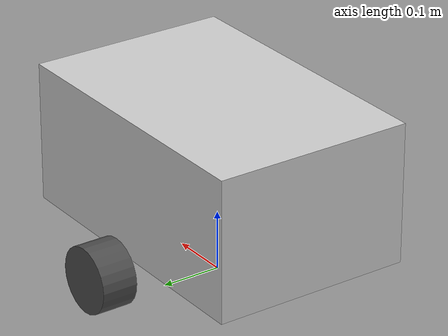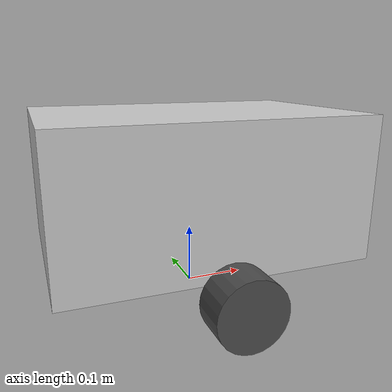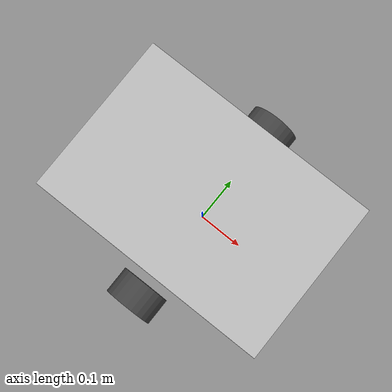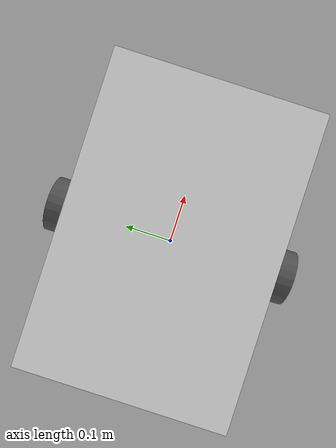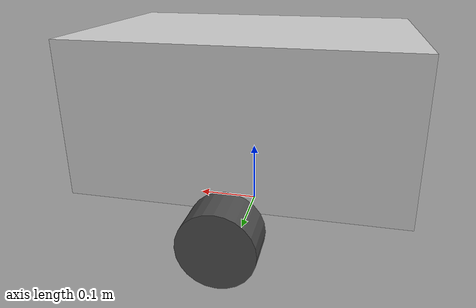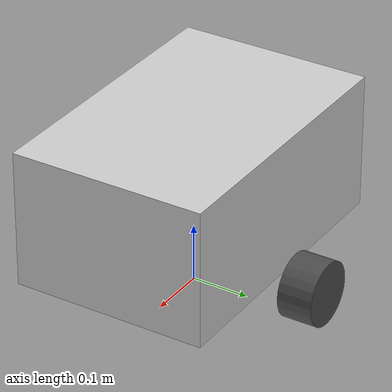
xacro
<?xml version="1.0"?>
<robot xmlns:xacro="http://www.ros.org/wiki/xacro" name="shark_description">

  <xacro:property name="base_width" value="0.335" />
  <xacro:property name="base_len" value="0.5" />
  <xacro:property name="base_height" value="0.235" />
  <xacro:property name="wheel_radius" value="0.055" />
  <xacro:property name="base_wheel_gap" value="0.05" />
  <xacro:property name="wheel_width" value="0.06" />
  <xacro:property name="wheel_separation" value="0.39" />
  <xacro:property name="wheel_joint_offset" value="0.0" />
  <xacro:property name="caster_height" value="0.07" />

  <xacro:macro name="box_inertia" params="m w h d">
    <inertial>
      <mass value="${m}"/>
      <inertia ixx="${m / 12.0 * (d*d + h*h)}" ixy="0.0" ixz="0.0" iyy="${m / 12.0 * (w*w + h*h)}" iyz="0.0" izz="${m / 12.0 * (w*w + d*d)}"/>
    </inertial>
  </xacro:macro>

  <link name="base_footprint">
    <xacro:box_inertia m="8" w="0.001" h="0.001" d="0.001"/>
    <visual>
      <origin xyz="0 0 0" rpy="0 0 0" />
      <material name="white"/>
        <geometry>
            <box size="0.001 0.001 0.001" />
        </geometry>
    </visual>
  </link>

  <link name="base_link">
    <xacro:box_inertia m="1" w="${base_len}" h="${base_width}" d="0.01"/>
    <visual>
      <material name="lightgray"/>
      <geometry>
        <box size="${base_len} ${base_width} ${base_height}"/>
      </geometry>
    </visual>
    <collision>
      <geometry>
        <box size="${base_len} ${base_width} ${base_height}"/>
      </geometry>
    </collision>
  </link>

  <joint name="base_link_joint" type="fixed">
    <origin xyz="0 0 ${base_height/2 + caster_height}" rpy="0 0 0" />
    <parent link="base_footprint"/>
    <child link="base_link" />
  </joint>

  <xacro:macro name="cylinder_inertia" params="m r h">
    <inertial>
      <mass value="${m}"/>
      <inertia ixx="${m*(3*r*r+h*h)/12}" ixy = "0" ixz = "0" iyy="${m*(3*r*r+h*h)/12}" iyz = "0" izz="${m*r*r/2}"/>
    </inertial>
  </xacro:macro>

  <xacro:macro name="wheel" params="prefix reflect">
    <link name="${prefix}_wheel">
      <visual>
	      <material name="darkgray"/>
        <origin xyz="0 0 0" rpy="${pi/2} 0 0"/>
        <geometry>
          <cylinder radius="${wheel_radius}" length="${wheel_width}"/>
        </geometry>
      </visual>
      <collision>
        <origin xyz="0 0 0" rpy="${pi/2} 0 0"/>
        <geometry>
          <cylinder radius="${wheel_radius}" length="0.05"/>
        </geometry>
      </collision>
      <xacro:cylinder_inertia m="10" r="${wheel_radius}" h="0.05"/>
    </link>

    <joint name="${prefix}_wheel" type="continuous">
      <axis xyz="0 1 0" rpy="0 0 0" />
      <parent link="base_link"/>
      <child link="${prefix}_wheel"/>
      <origin xyz="${wheel_joint_offset} ${((base_width/2)+base_wheel_gap)*reflect} ${(wheel_radius - caster_height) - base_height/2}" rpy="0 0 0"/>
    </joint>
  </xacro:macro>

  <xacro:wheel prefix="left" reflect="1"/>
  <xacro:wheel prefix="right" reflect="-1"/>

  <xacro:macro name="sphere_inertia" params="m r">
    <inertial>
      <mass value="${m}"/>
      <inertia ixx="${2.0*m*(r*r)/5.0}" ixy="0.0" ixz="0.0" iyy="${2.0*m*(r*r)/5.0}" iyz="0.0" izz="${2.0*m*(r*r)/5.0}"/>
    </inertial>
  </xacro:macro>

</robot>
